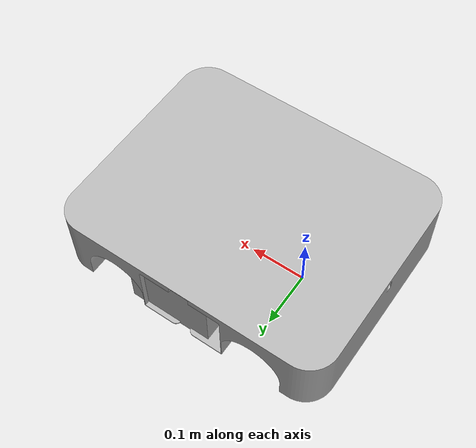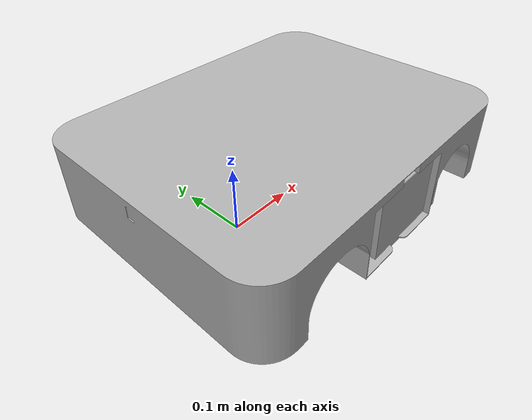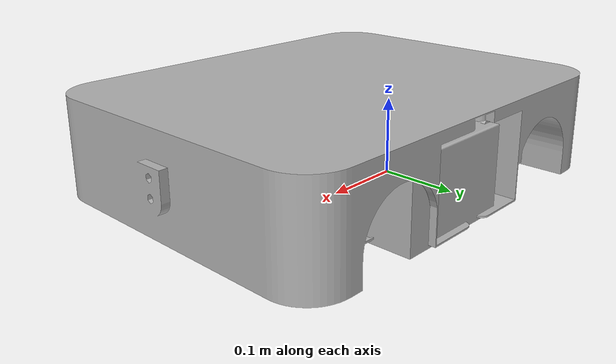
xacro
<?xml version="1.0" ?>
<robot name="urdf_briobot" xmlns:xacro="http://www.ros.org/wiki/xacro">

<xacro:include filename="$(find urdf_briobot_description)/urdf/materials.xacro" />
<xacro:include filename="$(find urdf_briobot_description)/urdf/urdf_briobot.trans" />
<xacro:include filename="$(find urdf_briobot_description)/urdf/urdf_briobot.gazebo" />
<link name="base_link">
  <inertial>
    <origin rpy="0 0 0" xyz="0.10319571694810317 2.4424255185476127e-08 0.08376967277926398"/>
    <mass value="9.658168325363642"/>
    <inertia ixx="0.167413" ixy="0.0" ixz="-8.1e-05" iyy="0.271238" iyz="-0.0" izz="0.394278"/>
  </inertial>
  <visual>
    <origin rpy="0 0 0" xyz="0 0 0"/>
    <geometry>
      <mesh filename="package://urdf_briobot_description/meshes/base_link.stl" scale="0.001 0.001 0.001"/>
    </geometry>
    <material name="silver_default"/>
  </visual>
  <collision>
    <origin rpy="0 0 0" xyz="0 0 0"/>
    <geometry>
      <mesh filename="package://urdf_briobot_description/meshes/base_link.stl" scale="0.001 0.001 0.001"/>
    </geometry>
  </collision>
</link>

<link name="Battery_v2_1">
  <inertial>
    <origin rpy="0 0 0" xyz="-1.2413955110007757e-05 0.05000011345483882 0.04999525052545398"/>
    <mass value="11.77379066110205"/>
    <inertia ixx="0.019619" ixy="0.0" ixz="8e-06" iyy="0.031887" iyz="-0.0" izz="0.031886"/>
  </inertial>
  <visual>
    <origin rpy="0 0 0" xyz="-0.1 -0.0915 -0.027"/>
    <geometry>
      <mesh filename="package://urdf_briobot_description/meshes/Battery_v2_1.stl" scale="0.001 0.001 0.001"/>
    </geometry>
    <material name="silver_default"/>
  </visual>
  <collision>
    <origin rpy="0 0 0" xyz="-0.1 -0.0915 -0.027"/>
    <geometry>
      <mesh filename="package://urdf_briobot_description/meshes/Battery_v2_1.stl" scale="0.001 0.001 0.001"/>
    </geometry>
  </collision>
</link>

<link name="Battery_v2_2">
  <inertial>
    <origin rpy="0 0 0" xyz="-1.2413955110202046e-05 -0.04999988927207277 0.04999525052545391"/>
    <mass value="11.77379066110205"/>
    <inertia ixx="0.019619" ixy="0.0" ixz="8e-06" iyy="0.031887" iyz="-0.0" izz="0.031886"/>
  </inertial>
  <visual>
    <origin rpy="0 0 0" xyz="-0.1 0.0915 -0.027"/>
    <geometry>
      <mesh filename="package://urdf_briobot_description/meshes/Battery_v2_2.stl" scale="0.001 0.001 0.001"/>
    </geometry>
    <material name="silver_default"/>
  </visual>
  <collision>
    <origin rpy="0 0 0" xyz="-0.1 0.0915 -0.027"/>
    <geometry>
      <mesh filename="package://urdf_briobot_description/meshes/Battery_v2_2.stl" scale="0.001 0.001 0.001"/>
    </geometry>
  </collision>
</link>

<joint name="Rigid10" type="fixed">
  <origin rpy="0 0 0" xyz="0.1 0.0915 0.027"/>
  <parent link="base_link"/>
  <child link="Battery_v2_1"/>
</joint>

<joint name="Rigid11" type="fixed">
  <origin rpy="0 0 0" xyz="0.1 -0.0915 0.027"/>
  <parent link="base_link"/>
  <child link="Battery_v2_2"/>
</joint>

</robot>

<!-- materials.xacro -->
<robot name="urdf_briobot" xmlns:xacro="http://www.ros.org/wiki/xacro" >

<material name="silver_default">
  <color rgba="0.700 0.700 0.700 1.000"/>
</material>

</robot>

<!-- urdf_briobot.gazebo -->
<robot name="urdf_briobot" xmlns:xacro="http://www.ros.org/wiki/xacro" >

<xacro:property name="body_color" value="Gazebo/Silver" />

<gazebo>
  <plugin filename="libgazebo_ros_control.so" name="control"/>
</gazebo>
<gazebo reference="base_link">
  <material>${body_color}</material>
  <mu1>0.2</mu1>
  <mu2>0.2</mu2>
  <selfCollide>true</selfCollide>
  <gravity>true</gravity>
</gazebo>

<gazebo reference="Universal_Bracket_For_Planetary_DC_Geared_Motor__Bend__v4_1">
  <material>${body_color}</material>
  <mu1>0.2</mu1>
  <mu2>0.2</mu2>
  <selfCollide>true</selfCollide>
</gazebo>

<gazebo reference="Universal_Bracket_For_Planetary_DC_Geared_Motor__Bend__v4_2">
  <material>${body_color}</material>
  <mu1>0.2</mu1>
  <mu2>0.2</mu2>
  <selfCollide>true</selfCollide>
</gazebo>

<gazebo reference="Universal_Bracket_For_Planetary_DC_Geared_Motor__Bend__v4_3">
  <material>${body_color}</material>
  <mu1>0.2</mu1>
  <mu2>0.2</mu2>
  <selfCollide>true</selfCollide>
</gazebo>

<gazebo reference="Universal_Bracket_For_Planetary_DC_Geared_Motor__Bend__v4_4">
  <material>${body_color}</material>
  <mu1>0.2</mu1>
  <mu2>0.2</mu2>
  <selfCollide>true</selfCollide>
</gazebo>

<gazebo reference="Rocker_Switch__with_engraving__v1_1">
  <material>${body_color}</material>
  <mu1>0.2</mu1>
  <mu2>0.2</mu2>
  <selfCollide>true</selfCollide>
</gazebo>

<gazebo reference="Mecanum_1_v1_1">
  <material>${body_color}</material>
  <mu1>0.2</mu1>
  <mu2>0.2</mu2>
  <selfCollide>true</selfCollide>
</gazebo>

<gazebo reference="Mecanum_2_v1_1">
  <material>${body_color}</material>
  <mu1>0.2</mu1>
  <mu2>0.2</mu2>
  <selfCollide>true</selfCollide>
</gazebo>

<gazebo reference="Mecanum_1_v1_2">
  <material>${body_color}</material>
  <mu1>0.2</mu1>
  <mu2>0.2</mu2>
  <selfCollide>true</selfCollide>
</gazebo>

<gazebo reference="Mecanum_2_v1_2">
  <material>${body_color}</material>
  <mu1>0.2</mu1>
  <mu2>0.2</mu2>
  <selfCollide>true</selfCollide>
</gazebo>

<gazebo reference="LiDAR_Mounting_Bracket_v1_1">
  <material>${body_color}</material>
  <mu1>0.2</mu1>
  <mu2>0.2</mu2>
  <selfCollide>true</selfCollide>
</gazebo>

<gazebo reference="ydlidar_x4_v1_1">
  <material>${body_color}</material>
  <mu1>0.2</mu1>
  <mu2>0.2</mu2>
  <selfCollide>true</selfCollide>
</gazebo>

<gazebo reference="Mounting_Bracket_Screw_v1_1">
  <material>${body_color}</material>
  <mu1>0.2</mu1>
  <mu2>0.2</mu2>
  <selfCollide>true</selfCollide>
</gazebo>

<gazebo reference="Mounting_Bracket_Screw_v1_2">
  <material>${body_color}</material>
  <mu1>0.2</mu1>
  <mu2>0.2</mu2>
  <selfCollide>true</selfCollide>
</gazebo>

<gazebo reference="Battery_v1_1">
  <material>${body_color}</material>
  <mu1>0.2</mu1>
  <mu2>0.2</mu2>
  <selfCollide>true</selfCollide>
</gazebo>

<gazebo reference="Battery_v1_2">
  <material>${body_color}</material>
  <mu1>0.2</mu1>
  <mu2>0.2</mu2>
  <selfCollide>true</selfCollide>
</gazebo>

</robot>
